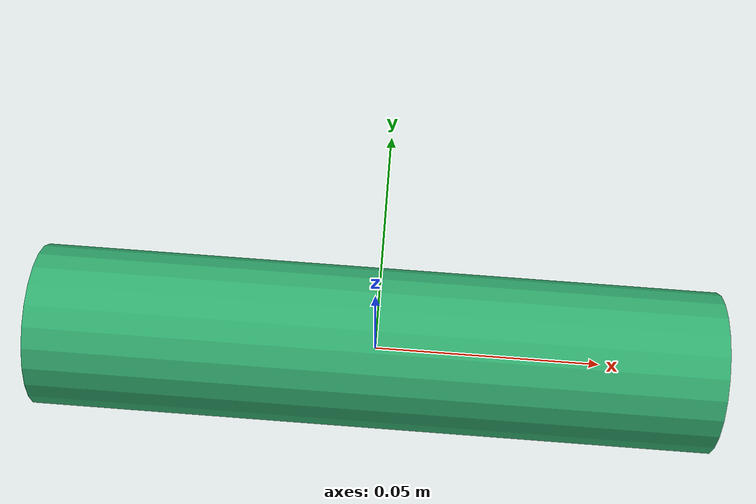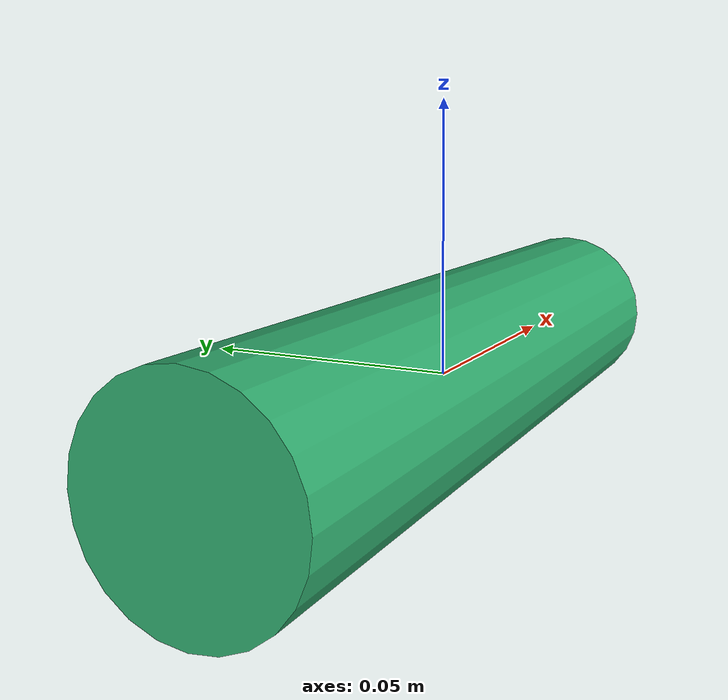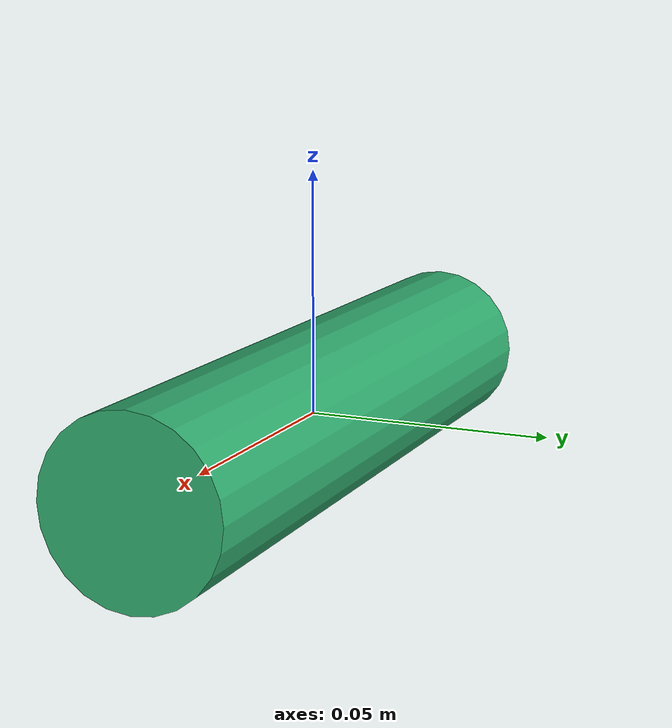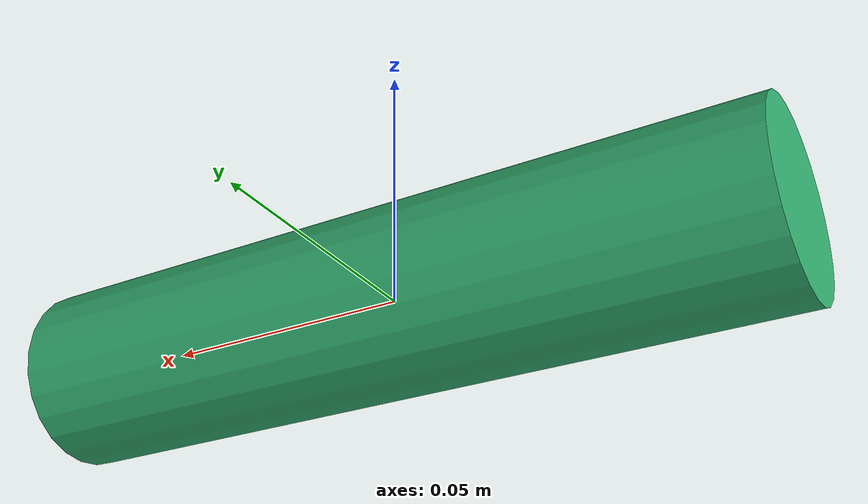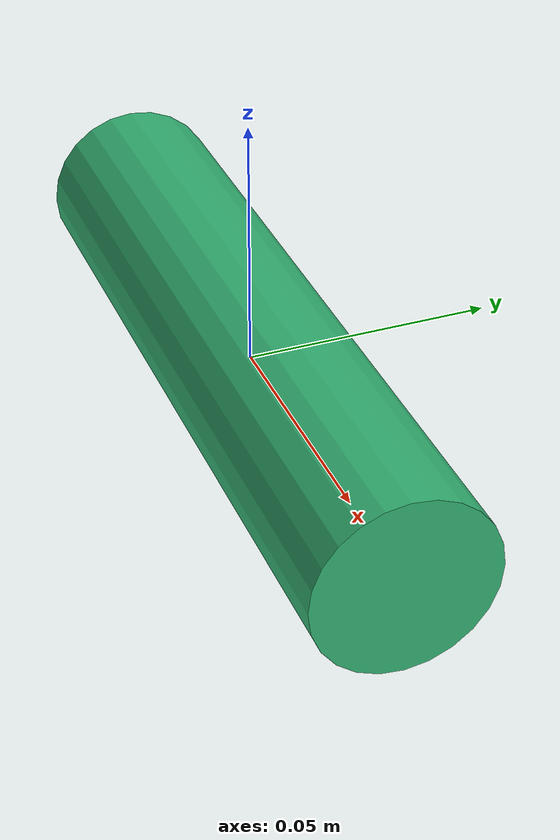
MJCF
<mujoco model="cylinder_grip">
  <worldbody>
    <body name="grasp_object" pos="0 0 0" quat="0.70710677 0 0.70710677 0">
      <freejoint name="grasp_object_freejoint"/>
      <geom
        name="grasp_object_geom"
        type="cylinder"
        size="0.018 0.075"
        density="400"
        friction="0.5 0.02 0.002"
        rgba="0.2 0.7 0.45 1"/>
      <site name="grasp_anchor" pos="0 0 0" size="0.004" rgba="1 0.2 0.2 1"/>
    </body>
  </worldbody>
</mujoco>
